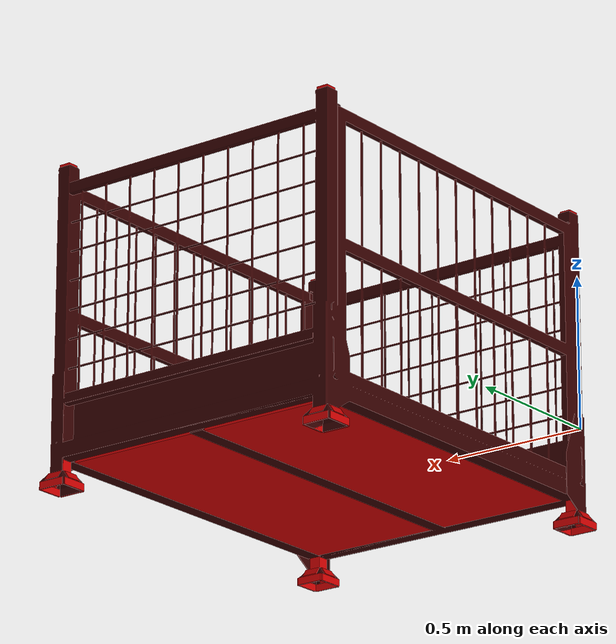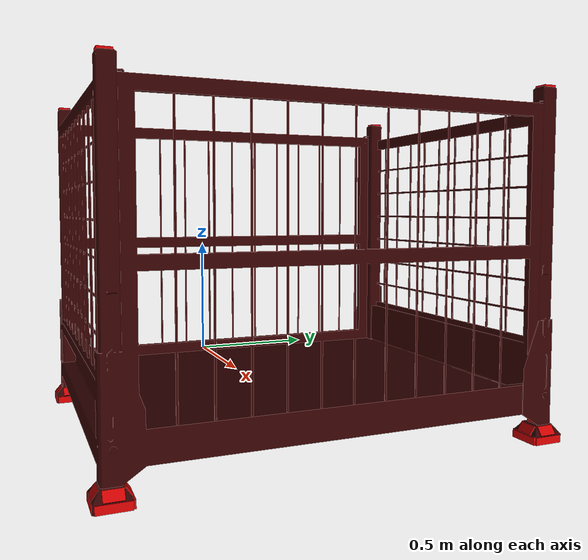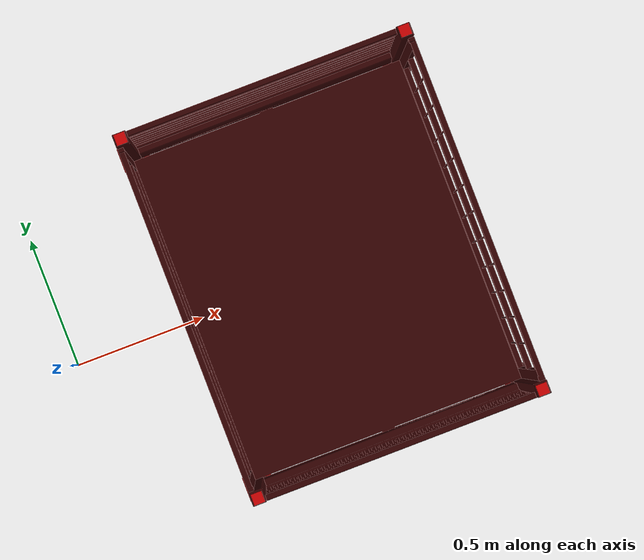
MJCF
<mujoco model="cage_pallet">
    <compiler angle="radian" meshdir="assets" autolimits="true"/>

    <default>
        <default class="cage_pallet">
            <joint frictionloss="0.1" armature="0.005"/>
            <position kp="50" dampratio="1"/>

            <default class="cage_body">
                <geom type="mesh" contype="1" conaffinity="1" group="1"/>
            </default>

            <!-- Visual geom only -->
            <default class="visual-only">
                <geom type="mesh" contype="0" conaffinity="0" group="2"/>
            </default>

        </default>
    </default>

    <asset>
        <mesh name="cart_body_mesh" file="CAGE_PALLET_54.stl"/>
        <material name="cage_material" rgba="0.2 0.0 0.0 1"/>
        <material name="cage_collision_material" rgba="0.8 0.0 0.0 1"/>
    </asset>

    <worldbody>

        <body name="cage_pallet_free" pos="1 0 0.056" quat="1 0 0 0">
          <freejoint name="cage_pallet_freejoint"/>

          <!-- Cage Pallet body -->
          <body name="cage_pallet_body" pos="0 0 0" quat="1 0 0 0" childclass="cage_pallet">
            <geom class="visual-only" type="mesh" mesh="cart_body_mesh" pos="0 0 0" quat="1 0 0 0" material="cage_material"/>
            <inertial pos="0 0 0" mass="100" diaginertia="100 100 100"/>
            <geom class="cage_body" type="box" pos="0 0 -0.00215407" size="0.54 0.63 0.025" material="cage_collision_material"/>
            <geom class="cage_body" type="box" pos="0.525  -0.663038  0.455923"  size="0.020 0.020 0.527" material="cage_collision_material"/>
            <geom class="cage_body" type="box" pos="0.525   0.663038  0.455923"  size="0.020 0.020 0.527" material="cage_collision_material"/>
            <geom class="cage_body" type="box" pos="-0.525   0.663038  0.455923"  size="0.020 0.020 0.527" material="cage_collision_material"/>
            <geom class="cage_body" type="box" pos="-0.525  -0.663038  0.455923"  size="0.020 0.020 0.527" material="cage_collision_material"/>
            <frame pos="0.525   0.663038  -0.083631" quat="1 0 0 0">
              <geom class="cage_body" type="box" pos="-0.040531  0.00000025  0"  size="0.003 0.027432 0.015197" axisangle="0 1 0  0.610865238" material="cage_collision_material"/>
              <geom class="cage_body" type="box" pos=" 0.040531  0.00000025  0"  size="0.003 0.027432 0.015197" axisangle="0 1 0 -0.610865238" material="cage_collision_material"/>
              <geom class="cage_body" type="box" pos=" 0  -0.04053075  0"  size="0.027432 0.003 0.015197" axisangle="1 0 0 -0.610865238" material="cage_collision_material"/>
              <geom class="cage_body" type="box" pos=" 0   0.04053075  0"  size="0.027432 0.003 0.015197" axisangle="1 0 0  0.610865238" material="cage_collision_material"/>
              <geom class="cage_body" type="box" pos=" 0  0.05 -0.026496"  size="0.047 0.003 0.012027" axisangle="0 1 0 0" material="cage_collision_material"/>
              <geom class="cage_body" type="box" pos=" 0 -0.05 -0.026496"  size="0.047 0.003 0.012027" axisangle="0 1 0 0" material="cage_collision_material"/>
              <geom class="cage_body" type="box" pos=" 0  0.05 -0.026496"  size="0.047 0.003 0.012027" axisangle="0 1 0 0" material="cage_collision_material"/>
              <geom class="cage_body" type="box" pos=" -0.05 0 -0.026496"  size="0.003 0.047 0.012027" axisangle="0 1 0 0" material="cage_collision_material"/>
              <geom class="cage_body" type="box" pos="  0.05 0 -0.026496"  size="0.003 0.047 0.012027" axisangle="0 1 0 0" material="cage_collision_material"/>
            </frame>
            <frame pos="0.525  -0.663038  -0.083631" quat="1 0 0 0">
              <geom class="cage_body" type="box" pos="-0.040531  0.00000025  0"  size="0.003 0.027432 0.015197" axisangle="0 1 0  0.610865238" material="cage_collision_material"/>
              <geom class="cage_body" type="box" pos=" 0.040531  0.00000025  0"  size="0.003 0.027432 0.015197" axisangle="0 1 0 -0.610865238" material="cage_collision_material"/>
              <geom class="cage_body" type="box" pos=" 0  -0.04053075  0"  size="0.027432 0.003 0.015197" axisangle="1 0 0 -0.610865238" material="cage_collision_material"/>
              <geom class="cage_body" type="box" pos=" 0   0.04053075  0"  size="0.027432 0.003 0.015197" axisangle="1 0 0  0.610865238" material="cage_collision_material"/>
              <geom class="cage_body" type="box" pos=" 0  0.05 -0.026496"  size="0.047 0.003 0.012027" axisangle="0 1 0 0" material="cage_collision_material"/>
              <geom class="cage_body" type="box" pos=" 0 -0.05 -0.026496"  size="0.047 0.003 0.012027" axisangle="0 1 0 0" material="cage_collision_material"/>
              <geom class="cage_body" type="box" pos=" 0  0.05 -0.026496"  size="0.047 0.003 0.012027" axisangle="0 1 0 0" material="cage_collision_material"/>
              <geom class="cage_body" type="box" pos=" -0.05 0 -0.026496"  size="0.003 0.047 0.012027" axisangle="0 1 0 0" material="cage_collision_material"/>
              <geom class="cage_body" type="box" pos="  0.05 0 -0.026496"  size="0.003 0.047 0.012027" axisangle="0 1 0 0" material="cage_collision_material"/>
            </frame>
            <frame pos="-0.525 -0.663038  -0.083631" quat="1 0 0 0">
              <geom class="cage_body" type="box" pos="-0.040531  0.00000025  0"  size="0.003 0.027432 0.015197" axisangle="0 1 0  0.610865238" material="cage_collision_material"/>
              <geom class="cage_body" type="box" pos=" 0.040531  0.00000025  0"  size="0.003 0.027432 0.015197" axisangle="0 1 0 -0.610865238" material="cage_collision_material"/>
              <geom class="cage_body" type="box" pos=" 0  -0.04053075  0"  size="0.027432 0.003 0.015197" axisangle="1 0 0 -0.610865238" material="cage_collision_material"/>
              <geom class="cage_body" type="box" pos=" 0   0.04053075  0"  size="0.027432 0.003 0.015197" axisangle="1 0 0  0.610865238" material="cage_collision_material"/>
              <geom class="cage_body" type="box" pos=" 0  0.05 -0.026496"  size="0.047 0.003 0.012027" axisangle="0 1 0 0" material="cage_collision_material"/>
              <geom class="cage_body" type="box" pos=" 0 -0.05 -0.026496"  size="0.047 0.003 0.012027" axisangle="0 1 0 0" material="cage_collision_material"/>
              <geom class="cage_body" type="box" pos=" 0  0.05 -0.026496"  size="0.047 0.003 0.012027" axisangle="0 1 0 0" material="cage_collision_material"/>
              <geom class="cage_body" type="box" pos=" -0.05 0 -0.026496"  size="0.003 0.047 0.012027" axisangle="0 1 0 0" material="cage_collision_material"/>
              <geom class="cage_body" type="box" pos="  0.05 0 -0.026496"  size="0.003 0.047 0.012027" axisangle="0 1 0 0" material="cage_collision_material"/>
            </frame>
            <frame pos="-0.525  0.663038  -0.083631" quat="1 0 0 0">
              <geom class="cage_body" type="box" pos="-0.040531  0.00000025  0"  size="0.003 0.027432 0.015197" axisangle="0 1 0  0.610865238" material="cage_collision_material"/>
              <geom class="cage_body" type="box" pos=" 0.040531  0.00000025  0"  size="0.003 0.027432 0.015197" axisangle="0 1 0 -0.610865238" material="cage_collision_material"/>
              <geom class="cage_body" type="box" pos=" 0  -0.04053075  0"  size="0.027432 0.003 0.015197" axisangle="1 0 0 -0.610865238" material="cage_collision_material"/>
              <geom class="cage_body" type="box" pos=" 0   0.04053075  0"  size="0.027432 0.003 0.015197" axisangle="1 0 0  0.610865238" material="cage_collision_material"/>
              <geom class="cage_body" type="box" pos=" 0  0.05 -0.026496"  size="0.047 0.003 0.012027" axisangle="0 1 0 0" material="cage_collision_material"/>
              <geom class="cage_body" type="box" pos=" 0 -0.05 -0.026496"  size="0.047 0.003 0.012027" axisangle="0 1 0 0" material="cage_collision_material"/>
              <geom class="cage_body" type="box" pos=" 0  0.05 -0.026496"  size="0.047 0.003 0.012027" axisangle="0 1 0 0" material="cage_collision_material"/>
              <geom class="cage_body" type="box" pos=" -0.05 0 -0.026496"  size="0.003 0.047 0.012027" axisangle="0 1 0 0" material="cage_collision_material"/>
              <geom class="cage_body" type="box" pos="  0.05 0 -0.026496"  size="0.003 0.047 0.012027" axisangle="0 1 0 0" material="cage_collision_material"/>
            </frame>
          </body>

        </body>
    </worldbody>
</mujoco>
